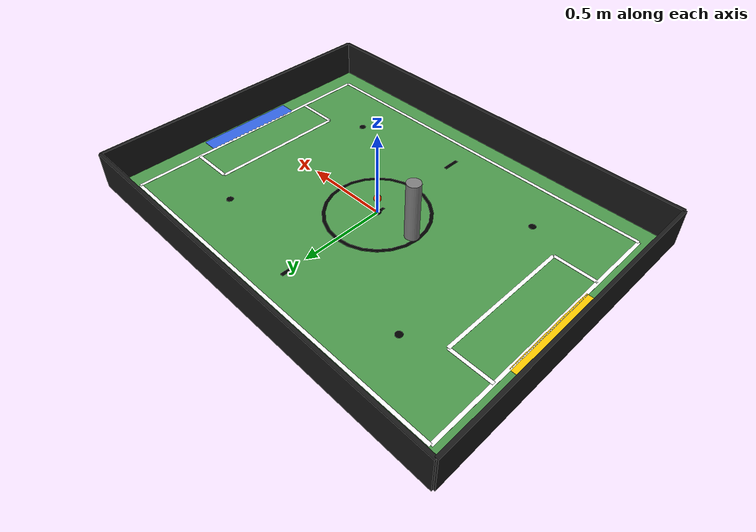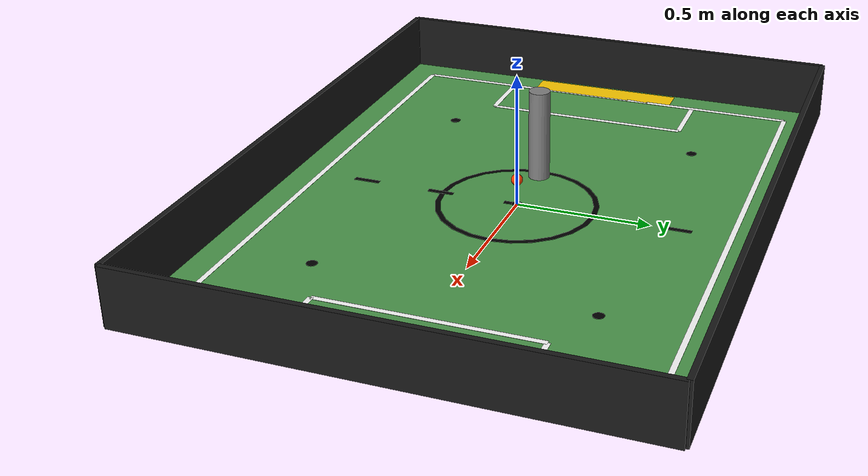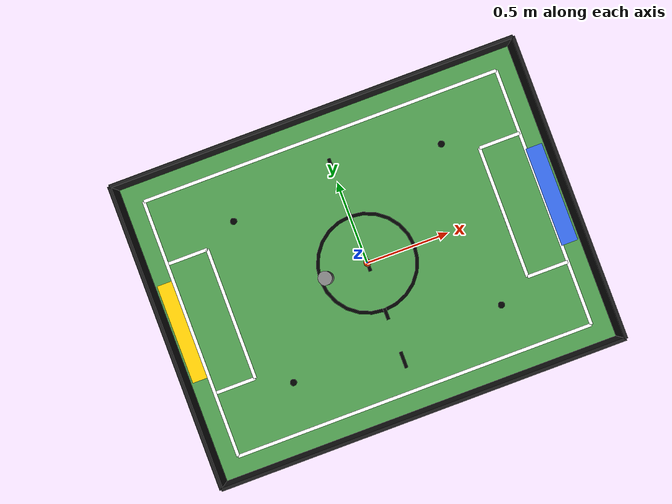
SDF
<?xml version="1.0" ?>
<sdf version="1.8">
  <world name="cancha_futbol">

    <plugin filename="gz-sim-physics-system" name="gz::sim::systems::Physics"/>
    <plugin filename="gz-sim-scene-broadcaster-system" name="gz::sim::systems::SceneBroadcaster"/>
    <plugin filename="gz-sim-user-commands-system" name="gz::sim::systems::UserCommands"/>
    <plugin filename="gz-sim-sensors-system" name="gz::sim::systems::Sensors">
      <render_engine>ogre2</render_engine>
    </plugin>

    <light type="directional" name="sun">
      <cast_shadows>true</cast_shadows>
      <pose>0 0 10 0 0 0</pose>
      <diffuse>0.9 0.9 0.9 1</diffuse>
      <specular>0.2 0.2 0.2 1</specular>
      <direction>-0.5 0.1 -0.9</direction>
    </light>

    <model name="cancha_piso">
      <static>true</static>
      <link name="link">

        <collision name="collision">
          <geometry><plane><normal>0 0 1</normal><size>2.43 1.82</size></plane></geometry>
          <surface><friction><ode><mu>1.0</mu><mu2>1.0</mu2></ode></friction></surface>
        </collision>

        <visual name="piso_verde">
          <geometry><plane><normal>0 0 1</normal><size>2.43 1.82</size></plane></geometry>
          <material><ambient>0.3 0.6 0.3 1</ambient><diffuse>0.3 0.6 0.3 1</diffuse></material>
        </visual>

        <visual name="porteria_amarilla">
          <pose>-1.145 0 0.001 0 0 0</pose>
          <geometry><box><size>0.10 0.60 0.001</size></box></geometry>
          <material><ambient>1.0 0.8 0.0 1</ambient><diffuse>1.0 0.8 0.0 1</diffuse></material>
        </visual>

        <visual name="porteria_azul">
          <pose>1.145 0 0.001 0 0 0</pose>
          <geometry><box><size>0.10 0.60 0.001</size></box></geometry>
          <material><ambient>0.2 0.4 0.9 1</ambient><diffuse>0.2 0.4 0.9 1</diffuse></material>
        </visual>

        <visual name="linea_norte"><pose>0 0.79 0.001 0 0 0</pose><geometry><box><size>2.19 0.02 0.001</size></box></geometry><material><ambient>1 1 1 1</ambient></material></visual>
        <visual name="linea_sur"><pose>0 -0.79 0.001 0 0 0</pose><geometry><box><size>2.19 0.02 0.001</size></box></geometry><material><ambient>1 1 1 1</ambient></material></visual>
        <visual name="linea_este"><pose>1.095 0 0.001 0 0 0</pose><geometry><box><size>0.02 1.58 0.001</size></box></geometry><material><ambient>1 1 1 1</ambient></material></visual>
        <visual name="linea_oeste"><pose>-1.095 0 0.001 0 0 0</pose><geometry><box><size>0.02 1.58 0.001</size></box></geometry><material><ambient>1 1 1 1</ambient></material></visual>

        <visual name="area_izq_top"><pose>-0.97 0.40 0.001 0 0 0</pose><geometry><box><size>0.25 0.02 0.001</size></box></geometry><material><ambient>1 1 1 1</ambient></material></visual>
        <visual name="area_izq_bot"><pose>-0.97 -0.40 0.001 0 0 0</pose><geometry><box><size>0.25 0.02 0.001</size></box></geometry><material><ambient>1 1 1 1</ambient></material></visual>
        <visual name="area_izq_frente"><pose>-0.845 0 0.001 0 0 0</pose><geometry><box><size>0.02 0.80 0.001</size></box></geometry><material><ambient>1 1 1 1</ambient></material></visual>

        <visual name="area_der_top"><pose>0.97 0.40 0.001 0 0 0</pose><geometry><box><size>0.25 0.02 0.001</size></box></geometry><material><ambient>1 1 1 1</ambient></material></visual>
        <visual name="area_der_bot"><pose>0.97 -0.40 0.001 0 0 0</pose><geometry><box><size>0.25 0.02 0.001</size></box></geometry><material><ambient>1 1 1 1</ambient></material></visual>
        <visual name="area_der_frente"><pose>0.845 0 0.001 0 0 0</pose><geometry><box><size>0.02 0.80 0.001</size></box></geometry><material><ambient>1 1 1 1</ambient></material></visual>

        <visual name="circulo_negro">
          <pose>0 0 0.001 0 0 0</pose>
          <geometry><cylinder><radius>0.30</radius><length>0.001</length></cylinder></geometry>
          <material><ambient>0 0 0 1</ambient></material>
        </visual>
        <visual name="circulo_hueco">
          <pose>0 0 0.0011 0 0 0</pose>
          <geometry><cylinder><radius>0.28</radius><length>0.0012</length></cylinder></geometry>
          <material><ambient>0.3 0.6 0.3 1</ambient><diffuse>0.3 0.6 0.3 1</diffuse></material>
        </visual>

        <visual name="dash_1"><pose>0 0.6 0.0012 0 0 0</pose><geometry><box><size>0.02 0.1 0.001</size></box></geometry><material><ambient>0 0 0 1</ambient></material></visual>
        <visual name="dash_2"><pose>0 0.3 0.0012 0 0 0</pose><geometry><box><size>0.02 0.1 0.001</size></box></geometry><material><ambient>0 0 0 1</ambient></material></visual>
        <visual name="dash_3"><pose>0 0.0 0.0012 0 0 0</pose><geometry><box><size>0.02 0.1 0.001</size></box></geometry><material><ambient>0 0 0 1</ambient></material></visual>
        <visual name="dash_4"><pose>0 -0.3 0.0012 0 0 0</pose><geometry><box><size>0.02 0.1 0.001</size></box></geometry><material><ambient>0 0 0 1</ambient></material></visual>
        <visual name="dash_5"><pose>0 -0.6 0.0012 0 0 0</pose><geometry><box><size>0.02 0.1 0.001</size></box></geometry><material><ambient>0 0 0 1</ambient></material></visual>

        <visual name="punto_centro"><pose>0 0 0.0015 0 0 0</pose><geometry><cylinder><radius>0.02</radius><length>0.001</length></cylinder></geometry><material><ambient>0 0 0 1</ambient></material></visual>
        <visual name="punto_izq_sup"><pose>-0.645 0.50 0.0015 0 0 0</pose><geometry><cylinder><radius>0.02</radius><length>0.001</length></cylinder></geometry><material><ambient>0 0 0 1</ambient></material></visual>
        <visual name="punto_izq_inf"><pose>-0.645 -0.50 0.0015 0 0 0</pose><geometry><cylinder><radius>0.02</radius><length>0.001</length></cylinder></geometry><material><ambient>0 0 0 1</ambient></material></visual>
        <visual name="punto_der_sup"><pose>0.645 0.50 0.0015 0 0 0</pose><geometry><cylinder><radius>0.02</radius><length>0.001</length></cylinder></geometry><material><ambient>0 0 0 1</ambient></material></visual>
        <visual name="punto_der_inf"><pose>0.645 -0.50 0.0015 0 0 0</pose><geometry><cylinder><radius>0.02</radius><length>0.001</length></cylinder></geometry><material><ambient>0 0 0 1</ambient></material></visual>

      </link>
    </model>

    <model name="barda_norte"><static>true</static><pose>0 0.91 0.11 0 0 0</pose><link name="link"><collision name="collision"><geometry><box><size>2.43 0.02 0.22</size></box></geometry></collision><visual name="visual"><geometry><box><size>2.43 0.02 0.22</size></box></geometry><material><ambient>0.1 0.1 0.1 1</ambient></material></visual></link></model>
    <model name="barda_sur"><static>true</static><pose>0 -0.91 0.11 0 0 0</pose><link name="link"><collision name="collision"><geometry><box><size>2.43 0.02 0.22</size></box></geometry></collision><visual name="visual"><geometry><box><size>2.43 0.02 0.22</size></box></geometry><material><ambient>0.1 0.1 0.1 1</ambient></material></visual></link></model>
    <model name="barda_este"><static>true</static><pose>1.215 0 0.11 0 0 0</pose><link name="link"><collision name="collision"><geometry><box><size>0.02 1.82 0.22</size></box></geometry></collision><visual name="visual"><geometry><box><size>0.02 1.82 0.22</size></box></geometry><material><ambient>0.1 0.1 0.1 1</ambient></material></visual></link></model>
    <model name="barda_oeste"><static>true</static><pose>-1.215 0 0.11 0 0 0</pose><link name="link"><collision name="collision"><geometry><box><size>0.02 1.82 0.22</size></box></geometry></collision><visual name="visual"><geometry><box><size>0.02 1.82 0.22</size></box></geometry><material><ambient>0.1 0.1 0.1 1</ambient></material></visual></link></model>

    <model name="pelota">
      <pose>0 0.0 0.1 0 0 0</pose> <link name="link">
        <collision name="collision">
          <geometry><sphere><radius>0.02135</radius></sphere></geometry> <surface>
            <bounce>
              <restitution_coefficient>0.6</restitution_coefficient> <threshold>0.1</threshold>
            </bounce>
            <friction>
              <ode><mu>0.8</mu><mu2>0.8</mu2></ode> </friction>
          </surface>
        </collision>
        <visual name="visual">
          <geometry><sphere><radius>0.02135</radius></sphere></geometry>
          <material>
            <ambient>1.0 0.25 0.0 1.0</ambient>
            <diffuse>1.0 0.25 0.0 1.0</diffuse>
          </material>
        </visual>
      </link>
    </model>

    <model name="obstaculo">
      <pose>-0.25 0.0 0.1 0 0 0</pose> <link name="link">
        <collision name="collision">
          <geometry><cylinder><radius>0.04</radius><length>0.5</length></cylinder></geometry> <surface>
            <bounce>
              <restitution_coefficient>0.6</restitution_coefficient> <threshold>0.1</threshold>
            </bounce>
            <friction>
              <ode><mu>0.8</mu><mu2>0.8</mu2></ode> </friction>
          </surface>
        </collision>
        <visual name="visual">
          <geometry><cylinder><radius>0.04</radius><length>0.5</length></cylinder></geometry>
          <material>
            <!-- Un color diferente para distinguirlo de la pelota -->
            <ambient>0.5 0.5 0.5 1</ambient>
            <diffuse>0.5 0.5 0.5 1</diffuse>
          </material>
        </visual>
      </link>
    </model>

  </world>
</sdf>
